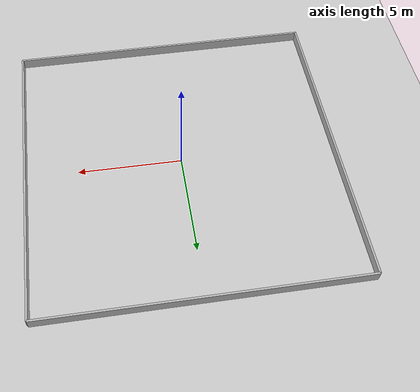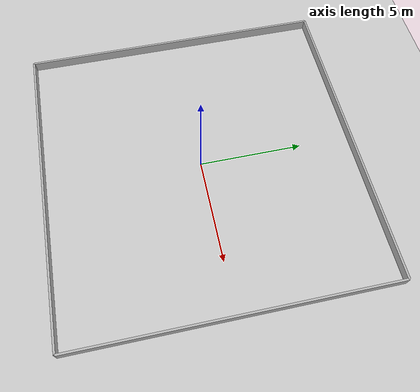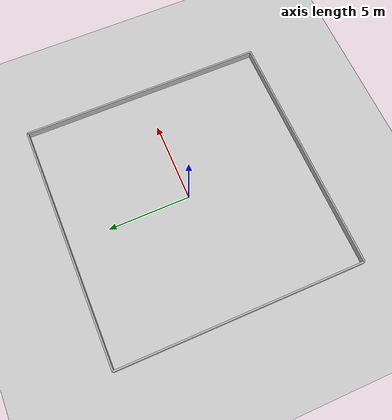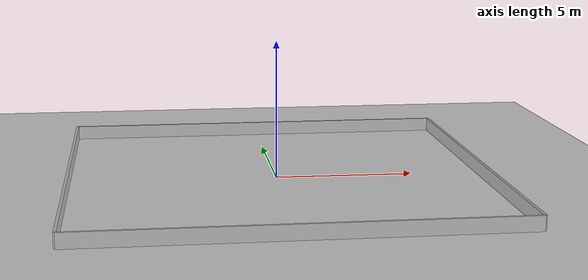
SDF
<?xml version="1.0" ?>
<sdf version="1.5">
  <world name="default">
    <!-- A global light source -->
    <include>
      <uri>model://sun</uri>
    </include>
    <!-- A ground plane -->
    <include>
      <uri>model://ground_plane</uri>
    </include>
    <model name="chamber">
        <static>true</static>
        <pose>0 0 0 0 0 0</pose>
        <link name="link">
            <collision name="collision-floor-left">
                <geometry>
                    <box>
                        <size>15 0.1 1</size>
                    </box>
                </geometry>
                <pose>0 -7.5 0.0 0 0 0</pose>
            </collision>
            <collision name="collision-floor-right">
                <geometry>
                    <box>
                        <size>15 0.1 1</size>
                    </box>
                </geometry>
                <pose>0 7.5 0.0 0 0 0</pose>
            </collision>
            <collision name="collision-floor-up">
                <geometry>
                    <box>
                        <size>0.1 15 1</size>
                    </box>
                </geometry>
                <pose>7.5 0 0.0 0 0 0</pose>
            </collision>
            <collision name="collision-floor-down">
                <geometry>
                    <box>
                        <size>0.1 15 1</size>
                    </box>
                </geometry>
                <pose>-7.5 0 0.0 0 0 0</pose>
            </collision>
            <visual name="visual-floor-left">
                <geometry>
                    <box>
                        <size>15 0.1 1</size>
                    </box>
                </geometry>
                <pose>0 -7.5 0.0 0 0 0</pose>
            </visual>
            <visual name="visual-floor-right">
                <geometry>
                    <box>
                        <size>15 0.1 1</size>
                    </box>
                </geometry>
                <pose>0 7.5 0.0 0 0 0</pose>
            </visual>
            <visual name="visual-floor-up">
                <geometry>
                    <box>
                        <size>0.1 15 1</size>
                    </box>
                </geometry>
                <pose>7.5 0 0.0 0 0 0</pose>
            </visual>
            <visual name="visual-floor-down">
                <geometry>
                    <box>
                        <size>0.1 15 1</size>
                    </box>
                </geometry>
                <pose>-7.5 0 0.0 0 0 0</pose>
            </visual>
        </link>
    </model>
<physics name='default_physics' default='0' type='ode'>
      <gravity>0 0 -9.8066</gravity>
      <ode>
        <solver>
          <type>quick</type>
          <iters>50</iters>
          <sor>1.3</sor>
          <use_dynamic_moi_rescaling>0</use_dynamic_moi_rescaling>
          <friction_model>cone_model</friction_model>
        </solver>
        <constraints>
          <cfm>0</cfm>
          <erp>0.2</erp>
          <contact_max_correcting_vel>100</contact_max_correcting_vel>
          <contact_surface_layer>0.001</contact_surface_layer>
        </constraints>
      </ode>
      <max_step_size>0.001</max_step_size>
      <real_time_factor>1</real_time_factor>
      <real_time_update_rate>1000</real_time_update_rate>
      <magnetic_field>6.0e-6 2.3e-5 -4.2e-5</magnetic_field>
    </physics>
  </world>
</sdf>
